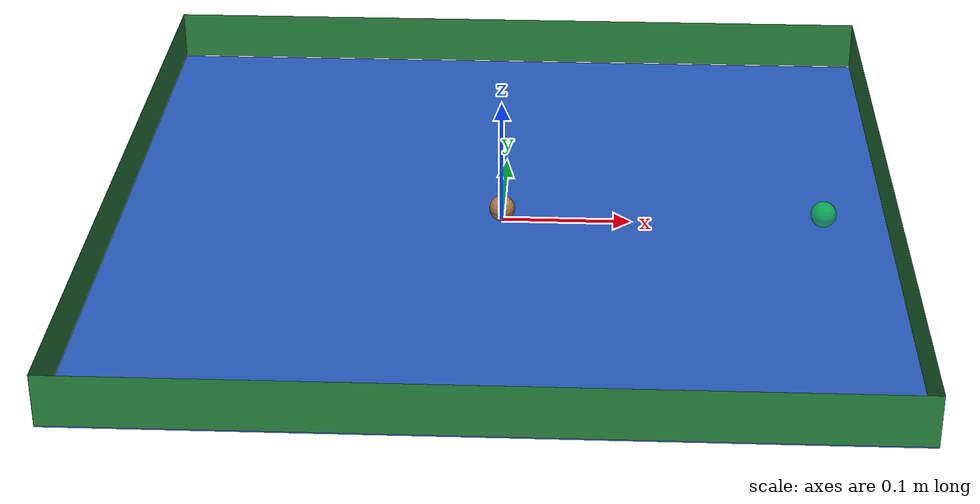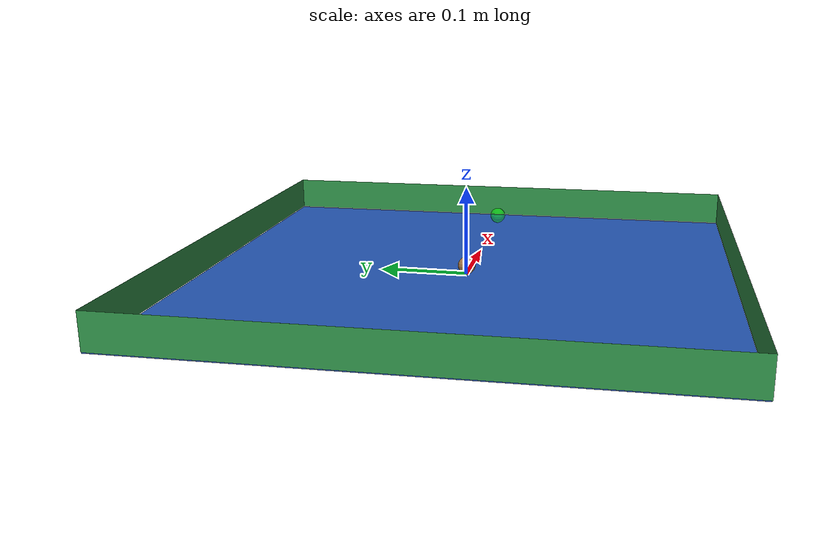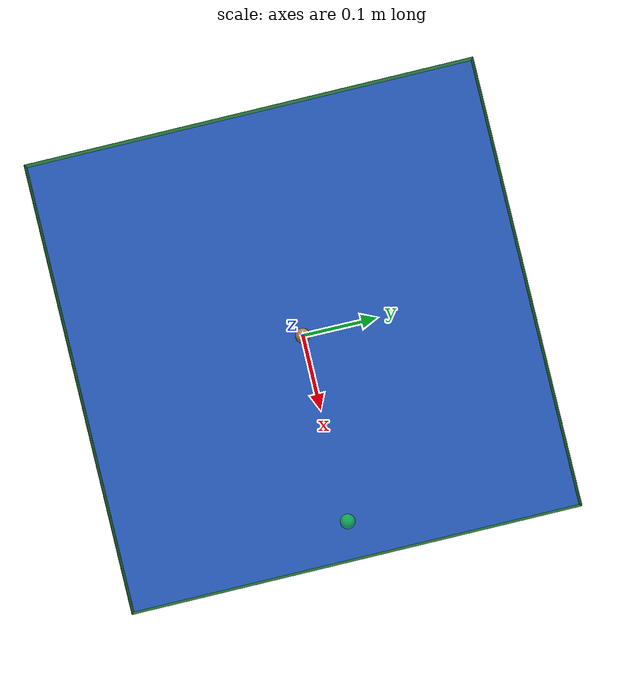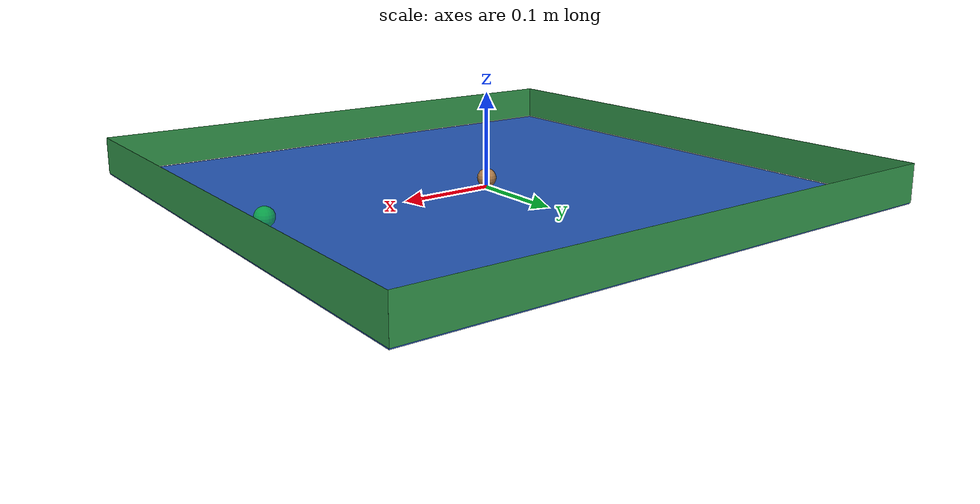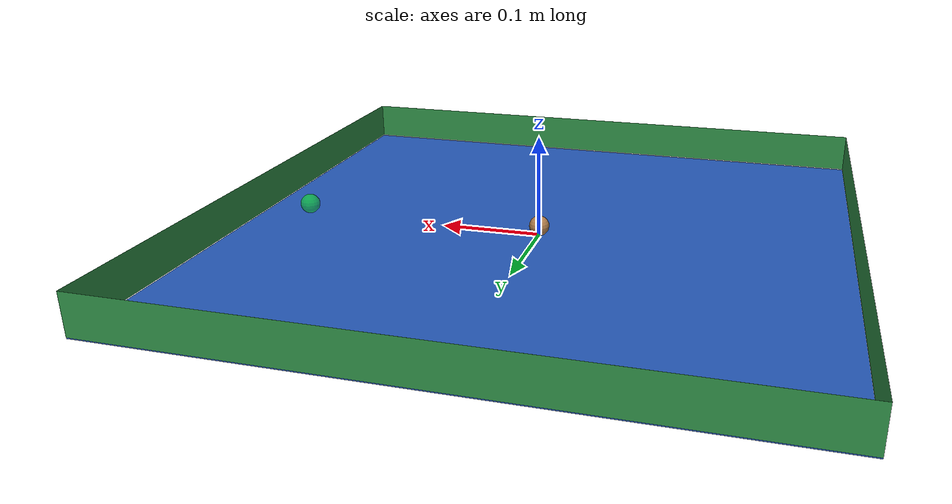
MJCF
<mujoco model="Particle Control">
  <include file="../common.xml"/>
  <include file="particle.xml" />

  <size memory="10K"/>

  <sensor>
    <framepos name="trace0" objtype="site" objname="tip"/>
    <framepos name="position" objtype="site" objname="tip"/>
    <framelinvel name="velocity" objtype="site" objname="tip"/>
  </sensor>

</mujoco>

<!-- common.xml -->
<mujoco>

  <visual>
    <headlight ambient=".4 .4 .4" diffuse=".8 .8 .8" specular="0.1 0.1 0.1"/>
    <map znear=".01"/>
    <quality shadowsize="2048"/>
    <global elevation="-15"/>
  </visual>

  <asset>
    <texture name="blue_grid" type="2d" builtin="checker" rgb1=".02 .14 .44" rgb2=".27 .55 1" width="300" height="300" mark="edge" markrgb="1 1 1"/>
    <material name="blue_grid" texture="blue_grid" texrepeat="1 1" texuniform="true" reflectance=".2"/>

    <texture name="grey_grid" type="2d" builtin="checker" rgb1=".26 .26 .26" rgb2=".6 .6 .6" width="300" height="300" mark="edge" markrgb="1 1 1"/>
    <material name="grey_grid" texture="grey_grid" texrepeat="1 1" texuniform="true" reflectance=".2"/>
    <texture name="skybox" type="skybox" builtin="gradient" rgb1=".66 .79 1" rgb2=".9 .91 .93" width="800" height="800"/>

    <material name="self" rgba=".7 .5 .3 1"/>
    <material name="self_default" rgba=".7 .5 .3 1"/>
    <material name="self_highlight" rgba="0 .5 .3 1"/>
    <material name="effector" rgba=".7 .4 .2 1"/>
    <material name="effector_default" rgba=".7 .4 .2 1"/>
    <material name="effector_highlight" rgba="0 .5 .3 1"/>
    <material name="decoration" rgba=".2 .6 .3 1"/>
    <material name="eye" rgba="0 .2 1 1"/>
    <material name="target" rgba=".6 .3 .3 1"/>
    <material name="target_default" rgba=".6 .3 .3 1"/>
    <material name="target_highlight" rgba=".6 .3 .3 .4"/>
    <material name="site" rgba=".5 .5 .5 .3"/>
  </asset>
</mujoco>

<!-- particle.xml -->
<mujoco model="Particle">
  <option timestep="0.01">
    <flag contact="disable"/>
  </option>

  <default>
    <joint type="hinge" axis="0 0 1" limited="true" range="-.29 .29" damping="1"/>
    <motor gear=".1" ctrlrange="-1 1" ctrllimited="true"/>
  </default>

  <worldbody>
    <body name="goal" mocap="true" pos="0.25 0 0.01" quat="1 0 0 0">
        <geom type="sphere" size=".01" contype="0" conaffinity="0" rgba="0 1 0 .5"/>
    </body>
    <light name="light" pos="0 0 1"/>
    <camera name="fixed" pos="0 0 .75" quat="1 0 0 0"/>
    <geom name="ground" type="plane" pos="0 0 0" size=".3 .3 .1" material="blue_grid"/>
    <geom name="wall_x" type="plane" pos="-.3 0 .02" zaxis="1 0 0"  size=".02 .3 .02" material="decoration"/>
    <geom name="wall_y" type="plane" pos="0 -.3 .02" zaxis="0 1 0"  size=".3 .02 .02" material="decoration"/>
    <geom name="wall_neg_x" type="plane" pos=".3 0 .02" zaxis="-1 0 0"  size=".02 .3 .02" material="decoration"/>
    <geom name="wall_neg_y" type="plane" pos="0 .3 .02" zaxis="0 -1 0"  size=".3 .02 .02" material="decoration"/>

    <body name="pointmass" pos="0 0 .01">
      <camera name="cam0" pos="0 -0.3 0.3" xyaxes="1 0 0 0 0.7 0.7"/>
      <joint name="root_x" type="slide"  pos="0 0 0" axis="1 0 0" />
      <joint name="root_y" type="slide"  pos="0 0 0" axis="0 1 0" />
      <geom name="pointmass" type="sphere" size=".01" material="self" mass=".3"/>
      <site name="tip" pos="0 0 0" size="0.01"/>
    </body>
  </worldbody>

  <actuator>
    <motor name="x_motor" joint="root_x" gear="1" ctrllimited="true" ctrlrange="-1 1"/>
    <motor name="y_motor" joint="root_y" gear="1" ctrllimited="true" ctrlrange="-1 1"/>
  </actuator>
</mujoco>
